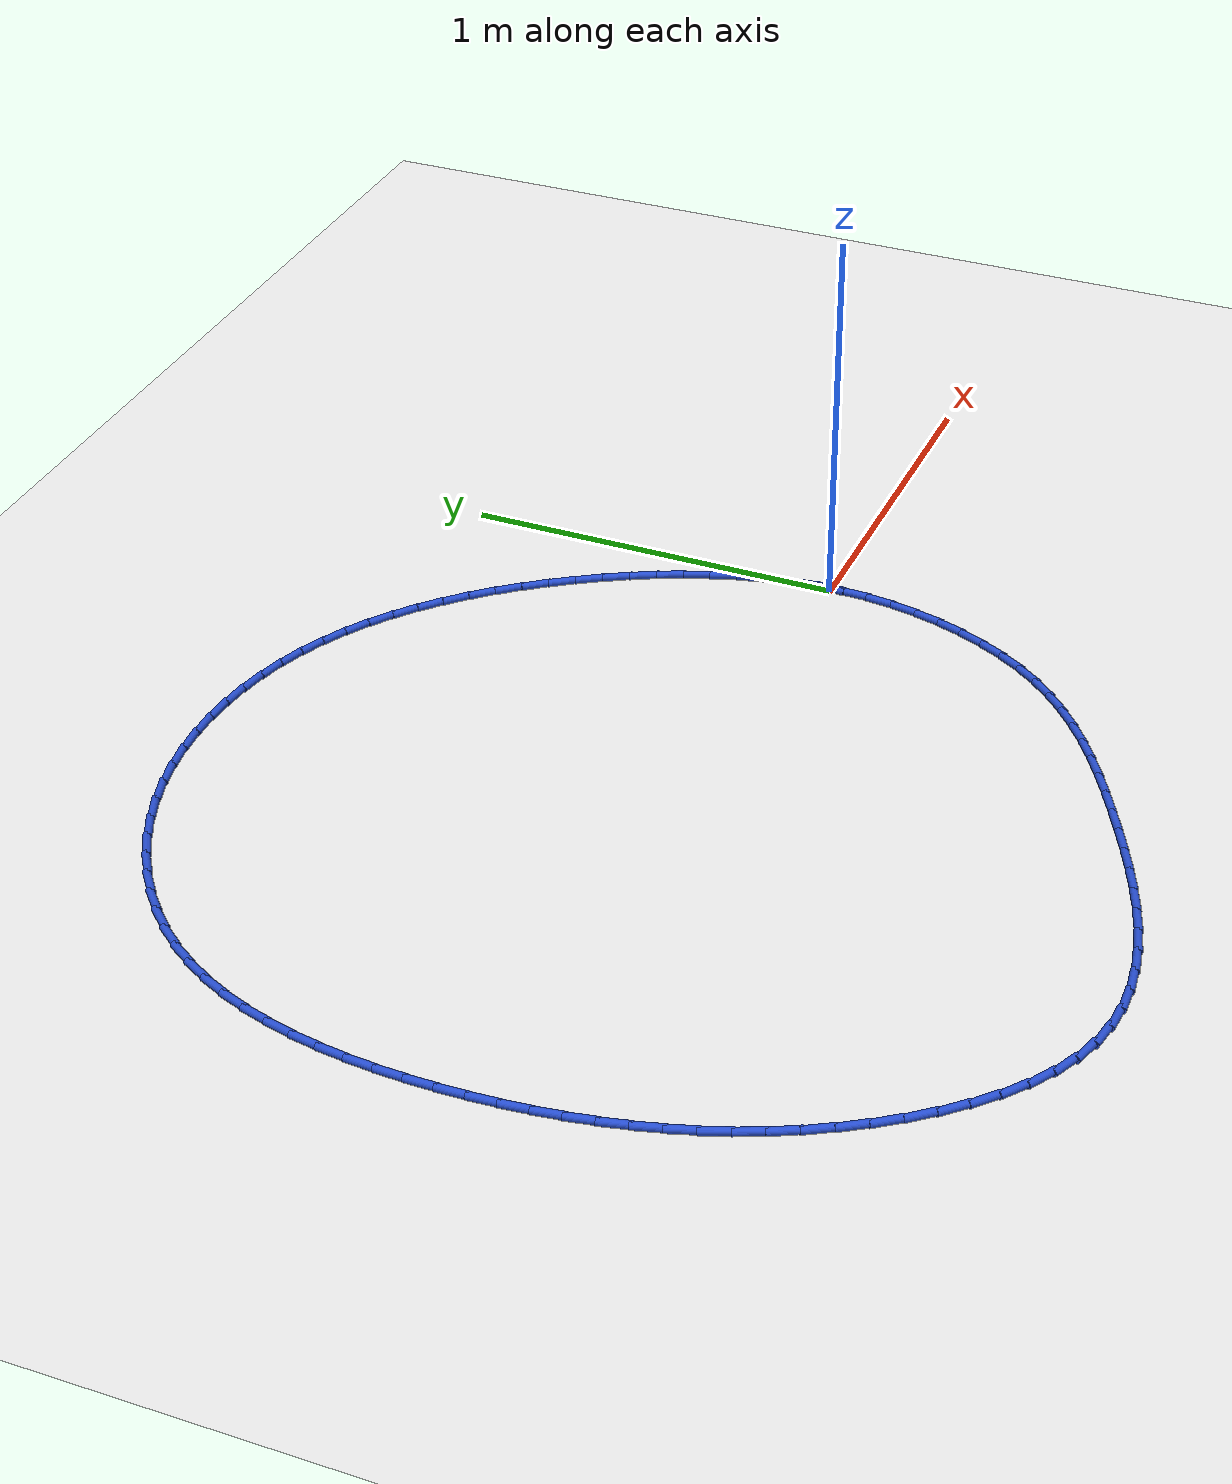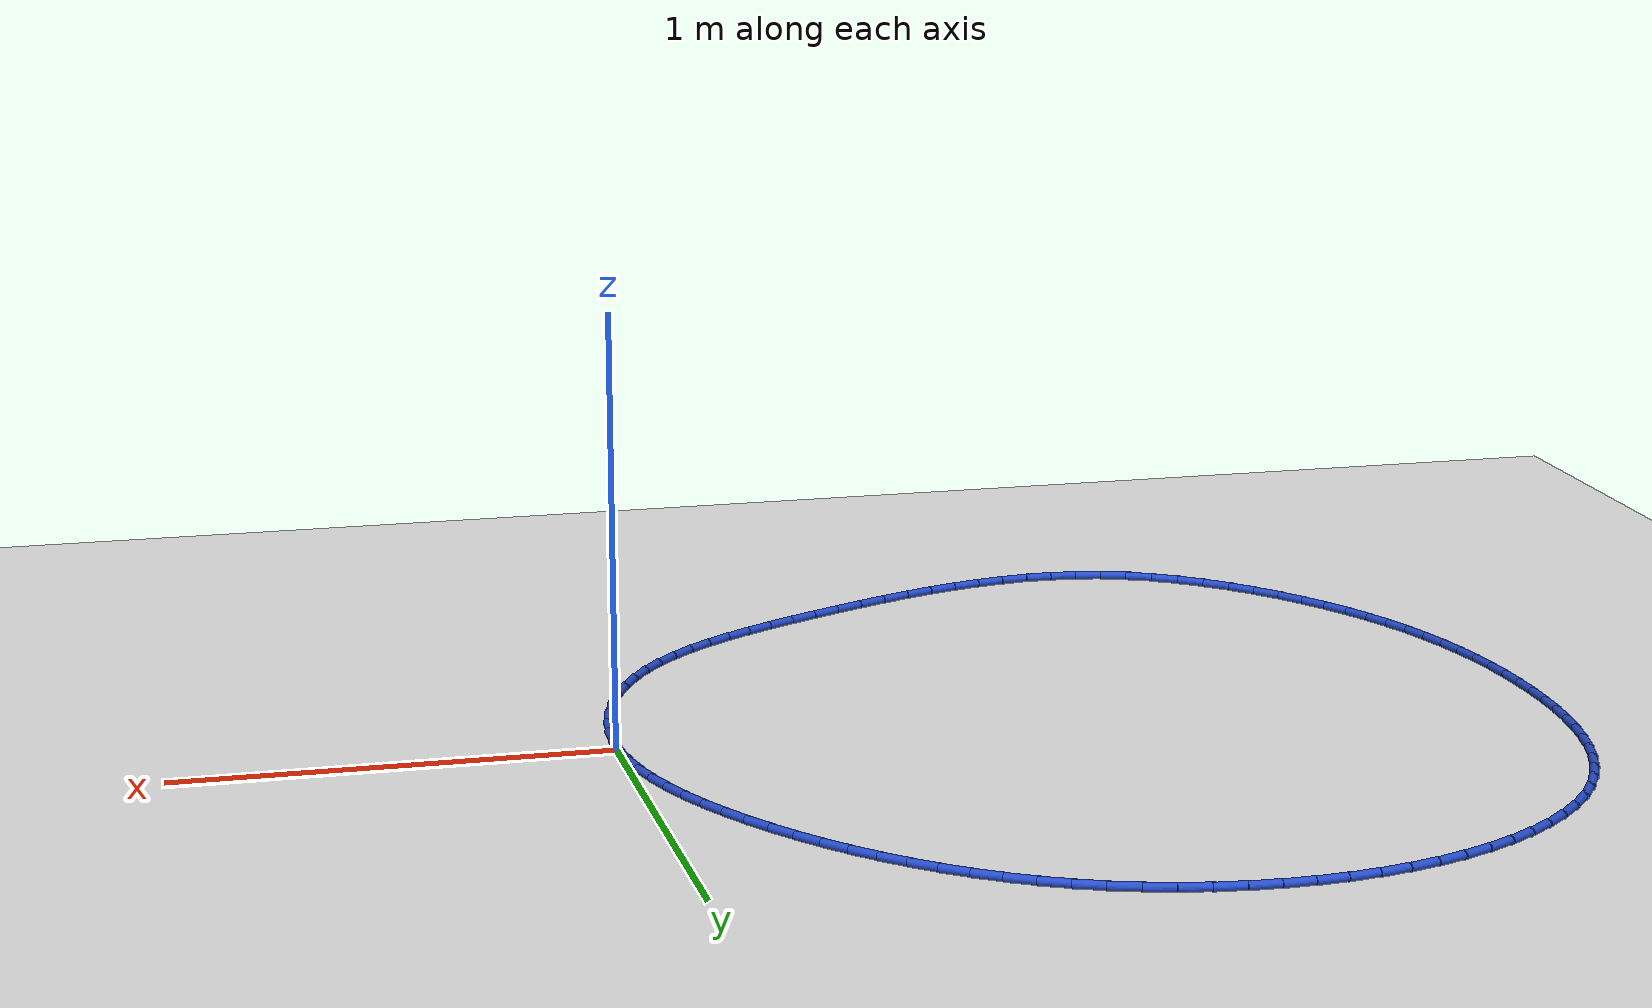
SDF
<sdf version="1.6">
 <world name="default">
  <light name="sun" type="directional">
   <pose>0 0 10 0 -0 0</pose>
   <diffuse>0.8 0.8 0.8 1</diffuse>
   <specular>0.2 0.2 0.2 1</specular>
   <attenuation>
    <range>1000</range>
    <constant>0.9</constant>
    <linear>0.01</linear>
    <quadratic>0.001</quadratic>
   </attenuation>
   <direction>-0.5 0.1 -0.9</direction>
  </light>
  <model name="ground_plane">
   <static>1</static>
   <link name="link">
    <collision name="collision">
     <geometry><plane><normal>0 0 1</normal><size>100 100</size></plane></geometry>
     <surface><friction><ode><mu>100</mu><mu2>50</mu2></ode></friction></surface>
    </collision>
    <visual name="visual">
     <cast_shadows>0</cast_shadows>
     <geometry><plane><normal>0 0 1</normal><size>100 100</size></plane></geometry>
     <material>
      <script><uri>file://media/materials/scripts/gazebo.material</uri><name>Gazebo/WhiteGlow</name></script>
     </material>
    </visual>
   </link>
  </model>
  <gravity>0 0 -9.8</gravity>
  <magnetic_field>6e-06 2.3e-05 -4.2e-05</magnetic_field>
  <atmosphere type="adiabatic"/>
  <physics name="default_physics" default="0" type="ode">
   <max_step_size>0.001</max_step_size>
   <real_time_factor>1</real_time_factor>
   <real_time_update_rate>1000</real_time_update_rate>
  </physics>
  <scene><ambient>0.4 0.4 0.4 1</ambient><background>0.7 0.7 0.7 1</background><shadows>1</shadows></scene>
  <spherical_coordinates>
   <surface_model>EARTH_WGS84</surface_model>
   <latitude_deg>0</latitude_deg>
   <longitude_deg>0</longitude_deg>
   <elevation>0</elevation>
   <heading_deg>0</heading_deg>
  </spherical_coordinates>
  <model name="line">
   <link name="link_0">
    <pose>9.71445146547012e-17 -2.7755575615628914e-17 0.01 0 1.57 -1.5147262831325878</pose>
    <collision name="collision">
     <geometry><cylinder><radius>0.01</radius><length>0.08</length></cylinder></geometry>
    </collision>
    <visual name="visual">
     <material>
      <script><name>Gazebo/Blue</name><uri>file://media/materials/scripts/gazebo.material</uri></script>
     </material>
     <geometry><cylinder><radius>0.01</radius><length>0.08</length></cylinder></geometry>
    </visual>
   </link>
   <link name="link_1">
    <pose>-0.003951358959909187 0.07039797024579914 0.01 0 1.57 -1.4385297579642664</pose>
    <collision name="collision">
     <geometry><cylinder><radius>0.01</radius><length>0.08</length></cylinder></geometry>
    </collision>
    <visual name="visual">
     <material>
      <script><name>Gazebo/Blue</name><uri>file://media/materials/scripts/gazebo.material</uri></script>
     </material>
     <geometry><cylinder><radius>0.01</radius><length>0.08</length></cylinder></geometry>
    </visual>
   </link>
   <link name="link_2">
    <pose>-0.013206673770764574 0.13996414740010804 0.01 0 1.57 -1.3667292630549812</pose>
    <collision name="collision">
     <geometry><cylinder><radius>0.01</radius><length>0.08</length></cylinder></geometry>
    </collision>
    <visual name="visual">
     <material>
      <script><name>Gazebo/Blue</name><uri>file://media/materials/scripts/gazebo.material</uri></script>
     </material>
     <geometry><cylinder><radius>0.01</radius><length>0.08</length></cylinder></geometry>
    </visual>
   </link>
   <link name="link_3">
    <pose>-0.027416838220805748 0.2086296212146814 0.01 0 1.57 -1.2996917438133595</pose>
    <collision name="collision">
     <geometry><cylinder><radius>0.01</radius><length>0.08</length></cylinder></geometry>
    </collision>
    <visual name="visual">
     <material>
      <script><name>Gazebo/Blue</name><uri>file://media/materials/scripts/gazebo.material</uri></script>
     </material>
     <geometry><cylinder><radius>0.01</radius><length>0.08</length></cylinder></geometry>
    </visual>
   </link>
   <link name="link_4">
    <pose>-0.046232746098272395 0.27632548144127406 0.01 0 1.57 -1.2375674090090112</pose>
    <collision name="collision">
     <geometry><cylinder><radius>0.01</radius><length>0.08</length></cylinder></geometry>
    </collision>
    <visual name="visual">
     <material>
      <script><name>Gazebo/Blue</name><uri>file://media/materials/scripts/gazebo.material</uri></script>
     </material>
     <geometry><cylinder><radius>0.01</radius><length>0.08</length></cylinder></geometry>
    </visual>
   </link>
   <link name="link_5">
    <pose>-0.06930529119140419 0.3429828178316404 0.01 0 1.57 -1.18033355965517</pose>
    <collision name="collision">
     <geometry><cylinder><radius>0.01</radius><length>0.08</length></cylinder></geometry>
    </collision>
    <visual name="visual">
     <material>
      <script><name>Gazebo/Blue</name><uri>file://media/materials/scripts/gazebo.material</uri></script>
     </material>
     <geometry><cylinder><radius>0.01</radius><length>0.08</length></cylinder></geometry>
    </visual>
   </link>
   <link name="link_6">
    <pose>-0.09628536728844081 0.40853272013753544 0.01 0 1.57 -1.127841644886024</pose>
    <collision name="collision">
     <geometry><cylinder><radius>0.01</radius><length>0.08</length></cylinder></geometry>
    </collision>
    <visual name="visual">
     <material>
      <script><name>Gazebo/Blue</name><uri>file://media/materials/scripts/gazebo.material</uri></script>
     </material>
     <geometry><cylinder><radius>0.01</radius><length>0.08</length></cylinder></geometry>
    </visual>
   </link>
   <link name="link_7">
    <pose>-0.12682386817762203 0.4729062781107139 0.01 0 1.57 -1.0798604011730617</pose>
    <collision name="collision">
     <geometry><cylinder><radius>0.01</radius><length>0.08</length></cylinder></geometry>
    </collision>
    <visual name="visual">
     <material>
      <script><name>Gazebo/Blue</name><uri>file://media/materials/scripts/gazebo.material</uri></script>
     </material>
     <geometry><cylinder><radius>0.01</radius><length>0.08</length></cylinder></geometry>
    </visual>
   </link>
   <link name="link_8">
    <pose>-0.16057168764718735 0.5360345815029303 0.01 0 1.57 -1.0361075438817524</pose>
    <collision name="collision">
     <geometry><cylinder><radius>0.01</radius><length>0.08</length></cylinder></geometry>
    </collision>
    <visual name="visual">
     <material>
      <script><name>Gazebo/Blue</name><uri>file://media/materials/scripts/gazebo.material</uri></script>
     </material>
     <geometry><cylinder><radius>0.01</radius><length>0.08</length></cylinder></geometry>
    </visual>
   </link>
   <link name="link_9">
    <pose>-0.19717995524021306 0.597848558604828 0.01 0 1.57 -0.994888940539869</pose>
    <collision name="collision">
     <geometry><cylinder><radius>0.01</radius><length>0.08</length></cylinder></geometry>
    </collision>
    <visual name="visual">
     <material>
      <script><name>Gazebo/Blue</name><uri>file://media/materials/scripts/gazebo.material</uri></script>
     </material>
     <geometry><cylinder><radius>0.01</radius><length>0.08</length></cylinder></geometry>
    </visual>
   </link>
   <link name="link_10">
    <pose>-0.2363827425794774 0.6582223332717217 0.01 0 1.57 -0.9524602867607532</pose>
    <collision name="collision">
     <geometry><cylinder><radius>0.01</radius><length>0.08</length></cylinder></geometry>
    </collision>
    <visual name="visual">
     <material>
      <script><name>Gazebo/Blue</name><uri>file://media/materials/scripts/gazebo.material</uri></script>
     </material>
     <geometry><cylinder><radius>0.01</radius><length>0.08</length></cylinder></geometry>
    </visual>
   </link>
   <link name="link_11">
    <pose>-0.2781188084887091 0.716889845499166 0.01 0 1.57 -0.9080032489054994</pose>
    <collision name="collision">
     <geometry><cylinder><radius>0.01</radius><length>0.08</length></cylinder></geometry>
    </collision>
    <visual name="visual">
     <material>
      <script><name>Gazebo/Blue</name><uri>file://media/materials/scripts/gazebo.material</uri></script>
     </material>
     <geometry><cylinder><radius>0.01</radius><length>0.08</length></cylinder></geometry>
    </visual>
   </link>
   <link name="link_12">
    <pose>-0.32235793013586844 0.7735637917892423 0.01 0 1.57 -0.8612242172225087</pose>
    <collision name="collision">
     <geometry><cylinder><radius>0.01</radius><length>0.08</length></cylinder></geometry>
    </collision>
    <visual name="visual">
     <material>
      <script><name>Gazebo/Blue</name><uri>file://media/materials/scripts/gazebo.material</uri></script>
     </material>
     <geometry><cylinder><radius>0.01</radius><length>0.08</length></cylinder></geometry>
    </visual>
   </link>
   <link name="link_13">
    <pose>-0.3690698846889154 0.8279568686440313 0.01 0 1.57 -0.8118363803283385</pose>
    <collision name="collision">
     <geometry><cylinder><radius>0.01</radius><length>0.08</length></cylinder></geometry>
    </collision>
    <visual name="visual">
     <material>
      <script><name>Gazebo/Blue</name><uri>file://media/materials/scripts/gazebo.material</uri></script>
     </material>
     <geometry><cylinder><radius>0.01</radius><length>0.08</length></cylinder></geometry>
    </visual>
   </link>
   <link name="link_14">
    <pose>-0.4182244493158099 0.8797817725656139 0.01 0 1.57 -0.759567248773542</pose>
    <collision name="collision">
     <geometry><cylinder><radius>0.01</radius><length>0.08</length></cylinder></geometry>
    </collision>
    <visual name="visual">
     <material>
      <script><name>Gazebo/Blue</name><uri>file://media/materials/scripts/gazebo.material</uri></script>
     </material>
     <geometry><cylinder><radius>0.01</radius><length>0.08</length></cylinder></geometry>
    </visual>
   </link>
   <link name="link_15">
    <pose>-0.4697914011845118 0.9287512000560705 0.01 0 1.57 -0.704170052382156</pose>
    <collision name="collision">
     <geometry><cylinder><radius>0.01</radius><length>0.08</length></cylinder></geometry>
    </collision>
    <visual name="visual">
     <material>
      <script><name>Gazebo/Blue</name><uri>file://media/materials/scripts/gazebo.material</uri></script>
     </material>
     <geometry><cylinder><radius>0.01</radius><length>0.08</length></cylinder></geometry>
    </visual>
   </link>
   <link name="link_16">
    <pose>-0.5237405174629813 0.9745778476174829 0.01 0 1.57 -0.6454395137074221</pose>
    <collision name="collision">
     <geometry><cylinder><radius>0.01</radius><length>0.08</length></cylinder></geometry>
    </collision>
    <visual name="visual">
     <material>
      <script><name>Gazebo/Blue</name><uri>file://media/materials/scripts/gazebo.material</uri></script>
     </material>
     <geometry><cylinder><radius>0.01</radius><length>0.08</length></cylinder></geometry>
    </visual>
   </link>
   <link name="link_17">
    <pose>-0.5800415753191785 1.0169744117519315 0.01 0 1.57 -0.5832321252114415</pose>
    <collision name="collision">
     <geometry><cylinder><radius>0.01</radius><length>0.08</length></cylinder></geometry>
    </collision>
    <visual name="visual">
     <material>
      <script><name>Gazebo/Blue</name><uri>file://media/materials/scripts/gazebo.material</uri></script>
     </material>
     <geometry><cylinder><radius>0.01</radius><length>0.08</length></cylinder></geometry>
    </visual>
   </link>
   <link name="link_18">
    <pose>-0.6386643519210631 1.0556535889614969 0.01 0 1.57 -0.5174903272145824</pose>
    <collision name="collision">
     <geometry><cylinder><radius>0.01</radius><length>0.08</length></cylinder></geometry>
    </collision>
    <visual name="visual">
     <material>
      <script><name>Gazebo/Blue</name><uri>file://media/materials/scripts/gazebo.material</uri></script>
     </material>
     <geometry><cylinder><radius>0.01</radius><length>0.08</length></cylinder></geometry>
    </visual>
   </link>
   <link name="link_19">
    <pose>-0.6995786244365955 1.090328075748261 0.01 0 1.57 -0.44826883846639787</pose>
    <collision name="collision">
     <geometry><cylinder><radius>0.01</radius><length>0.08</length></cylinder></geometry>
    </collision>
    <visual name="visual">
     <material>
      <script><name>Gazebo/Blue</name><uri>file://media/materials/scripts/gazebo.material</uri></script>
     </material>
     <geometry><cylinder><radius>0.01</radius><length>0.08</length></cylinder></geometry>
    </visual>
   </link>
   <link name="link_20">
    <pose>-0.7627541700337356 1.1207105686143037 0.01 0 1.57 -0.3762239801789702</pose>
    <collision name="collision">
     <geometry><cylinder><radius>0.01</radius><length>0.08</length></cylinder></geometry>
    </collision>
    <visual name="visual">
     <material>
      <script><name>Gazebo/Blue</name><uri>file://media/materials/scripts/gazebo.material</uri></script>
     </material>
     <geometry><cylinder><radius>0.01</radius><length>0.08</length></cylinder></geometry>
    </visual>
   </link>
   <link name="link_21">
    <pose>-0.8281313686734181 1.1465372349585983 0.01 0 1.57 -0.30475079434452523</pose>
    <collision name="collision">
     <geometry><cylinder><radius>0.01</radius><length>0.08</length></cylinder></geometry>
    </collision>
    <visual name="visual">
     <material>
      <script><name>Gazebo/Blue</name><uri>file://media/materials/scripts/gazebo.material</uri></script>
     </material>
     <geometry><cylinder><radius>0.01</radius><length>0.08</length></cylinder></geometry>
    </visual>
   </link>
   <link name="link_22">
    <pose>-0.895442934503482 1.1677100437436199 0.01 0 1.57 -0.23498118925493577</pose>
    <collision name="collision">
     <geometry><cylinder><radius>0.01</radius><length>0.08</length></cylinder></geometry>
    </collision>
    <visual name="visual">
     <material>
      <script><name>Gazebo/Blue</name><uri>file://media/materials/scripts/gazebo.material</uri></script>
     </material>
     <geometry><cylinder><radius>0.01</radius><length>0.08</length></cylinder></geometry>
    </visual>
   </link>
   <link name="link_23">
    <pose>-0.9643321326145832 1.184202380566642 0.01 0 1.57 -0.16654407709810162</pose>
    <collision name="collision">
     <geometry><cylinder><radius>0.01</radius><length>0.08</length></cylinder></geometry>
    </collision>
    <visual name="visual">
     <material>
      <script><name>Gazebo/Blue</name><uri>file://media/materials/scripts/gazebo.material</uri></script>
     </material>
     <geometry><cylinder><radius>0.01</radius><length>0.08</length></cylinder></geometry>
    </visual>
   </link>
   <link name="link_24">
    <pose>-1.034441878322058 1.1959879102875395 0.01 0 1.57 -0.09904177817907332</pose>
    <collision name="collision">
     <geometry><cylinder><radius>0.01</radius><length>0.08</length></cylinder></geometry>
    </collision>
    <visual name="visual">
     <material>
      <script><name>Gazebo/Blue</name><uri>file://media/materials/scripts/gazebo.material</uri></script>
     </material>
     <geometry><cylinder><radius>0.01</radius><length>0.08</length></cylinder></geometry>
    </visual>
   </link>
   <link name="link_25">
    <pose>-1.1054150869412434 1.2030402977661874 0.01 0 1.57 -0.032066835081105485</pose>
    <collision name="collision">
     <geometry><cylinder><radius>0.01</radius><length>0.08</length></cylinder></geometry>
    </collision>
    <visual name="visual">
     <material>
      <script><name>Gazebo/Blue</name><uri>file://media/materials/scripts/gazebo.material</uri></script>
     </material>
     <geometry><cylinder><radius>0.01</radius><length>0.08</length></cylinder></geometry>
    </visual>
   </link>
   <link name="link_26">
    <pose>-1.1768946737874748 1.2053332078624588 0.01 0 1.57 0.034788993394477795</pose>
    <collision name="collision">
     <geometry><cylinder><radius>0.01</radius><length>0.08</length></cylinder></geometry>
    </collision>
    <visual name="visual">
     <material>
      <script><name>Gazebo/Blue</name><uri>file://media/materials/scripts/gazebo.material</uri></script>
     </material>
     <geometry><cylinder><radius>0.01</radius><length>0.08</length></cylinder></geometry>
    </visual>
   </link>
   <link name="link_27">
    <pose>-1.24852355417609 1.20284030543623 0.01 0 1.57 0.10192696554585572</pose>
    <collision name="collision">
     <geometry><cylinder><radius>0.01</radius><length>0.08</length></cylinder></geometry>
    </collision>
    <visual name="visual">
     <material>
      <script><name>Gazebo/Blue</name><uri>file://media/materials/scripts/gazebo.material</uri></script>
     </material>
     <geometry><cylinder><radius>0.01</radius><length>0.08</length></cylinder></geometry>
    </visual>
   </link>
   <link name="link_28">
    <pose>-1.3199446434224245 1.1955352553473741 0.01 0 1.57 0.16973376282997418</pose>
    <collision name="collision">
     <geometry><cylinder><radius>0.01</radius><length>0.08</length></cylinder></geometry>
    </collision>
    <visual name="visual">
     <material>
      <script><name>Gazebo/Blue</name><uri>file://media/materials/scripts/gazebo.material</uri></script>
     </material>
     <geometry><cylinder><radius>0.01</radius><length>0.08</length></cylinder></geometry>
    </visual>
   </link>
   <link name="link_29">
    <pose>-1.3908008568418146 1.183391722455767 0.01 0 1.57 0.23857309184566997</pose>
    <collision name="collision">
     <geometry><cylinder><radius>0.01</radius><length>0.08</length></cylinder></geometry>
    </collision>
    <visual name="visual">
     <material>
      <script><name>Gazebo/Blue</name><uri>file://media/materials/scripts/gazebo.material</uri></script>
     </material>
     <geometry><cylinder><radius>0.01</radius><length>0.08</length></cylinder></geometry>
    </visual>
   </link>
   <link name="link_30">
    <pose>-1.4607351097495973 1.1663833716212828 0.01 0 1.57 0.30866552039514705</pose>
    <collision name="collision">
     <geometry><cylinder><radius>0.01</radius><length>0.08</length></cylinder></geometry>
    </collision>
    <visual name="visual">
     <material>
      <script><name>Gazebo/Blue</name><uri>file://media/materials/scripts/gazebo.material</uri></script>
     </material>
     <geometry><cylinder><radius>0.01</radius><length>0.08</length></cylinder></geometry>
    </visual>
   </link>
   <link name="link_31">
    <pose>-1.5293869067040609 1.1444932846334737 0.01 0 1.57 0.37899876862672727</pose>
    <collision name="collision">
     <geometry><cylinder><radius>0.01</radius><length>0.08</length></cylinder></geometry>
    </collision>
    <visual name="visual">
     <material>
      <script><name>Gazebo/Blue</name><uri>file://media/materials/scripts/gazebo.material</uri></script>
     </material>
     <geometry><cylinder><radius>0.01</radius><length>0.08</length></cylinder></geometry>
    </visual>
   </link>
   <link name="link_32">
    <pose>-1.5963524460936316 1.1178241094516712 0.01 0 1.57 0.449241394405674</pose>
    <collision name="collision">
     <geometry><cylinder><radius>0.01</radius><length>0.08</length></cylinder></geometry>
    </collision>
    <visual name="visual">
     <material>
      <script><name>Gazebo/Blue</name><uri>file://media/materials/scripts/gazebo.material</uri></script>
     </material>
     <geometry><cylinder><radius>0.01</radius><length>0.08</length></cylinder></geometry>
    </visual>
   </link>
   <link name="link_33">
    <pose>-1.6611981467043748 1.086560714028409 0.01 0 1.57 0.5200638719967609</pose>
    <collision name="collision">
     <geometry><cylinder><radius>0.01</radius><length>0.08</length></cylinder></geometry>
    </collision>
    <visual name="visual">
     <material>
      <script><name>Gazebo/Blue</name><uri>file://media/materials/scripts/gazebo.material</uri></script>
     </material>
     <geometry><cylinder><radius>0.01</radius><length>0.08</length></cylinder></geometry>
    </visual>
   </link>
   <link name="link_34">
    <pose>-1.723489841366415 1.0508895841112795 0.01 0 1.57 0.5921551304326107</pose>
    <collision name="collision">
     <geometry><cylinder><radius>0.01</radius><length>0.08</length></cylinder></geometry>
    </collision>
    <visual name="visual">
     <material>
      <script><name>Gazebo/Blue</name><uri>file://media/materials/scripts/gazebo.material</uri></script>
     </material>
     <geometry><cylinder><radius>0.01</radius><length>0.08</length></cylinder></geometry>
    </visual>
   </link>
   <link name="link_35">
    <pose>-1.7827933629098764 1.0109972054478744 0.01 0 1.57 0.6661960105916387</pose>
    <collision name="collision">
     <geometry><cylinder><radius>0.01</radius><length>0.08</length></cylinder></geometry>
    </collision>
    <visual name="visual">
     <material>
      <script><name>Gazebo/Blue</name><uri>file://media/materials/scripts/gazebo.material</uri></script>
     </material>
     <geometry><cylinder><radius>0.01</radius><length>0.08</length></cylinder></geometry>
    </visual>
   </link>
   <link name="link_36">
    <pose>-1.8386745441648824 0.9670700637857859 0.01 0 1.57 0.7428461998371294</pose>
    <collision name="collision">
     <geometry><cylinder><radius>0.01</radius><length>0.08</length></cylinder></geometry>
    </collision>
    <visual name="visual">
     <material>
      <script><name>Gazebo/Blue</name><uri>file://media/materials/scripts/gazebo.material</uri></script>
     </material>
     <geometry><cylinder><radius>0.01</radius><length>0.08</length></cylinder></geometry>
    </visual>
   </link>
   <link name="link_37">
    <pose>-1.8906992179615572 0.9192946448726056 0.01 0 1.57 0.8227224176458039</pose>
    <collision name="collision">
     <geometry><cylinder><radius>0.01</radius><length>0.08</length></cylinder></geometry>
    </collision>
    <visual name="visual">
     <material>
      <script><name>Gazebo/Blue</name><uri>file://media/materials/scripts/gazebo.material</uri></script>
     </material>
     <geometry><cylinder><radius>0.01</radius><length>0.08</length></cylinder></geometry>
    </visual>
   </link>
   <link name="link_38">
    <pose>-1.9384332171300251 0.867857434455926 0.01 0 1.57 0.9063646610201018</pose>
    <collision name="collision">
     <geometry><cylinder><radius>0.01</radius><length>0.08</length></cylinder></geometry>
    </collision>
    <visual name="visual">
     <material>
      <script><name>Gazebo/Blue</name><uri>file://media/materials/scripts/gazebo.material</uri></script>
     </material>
     <geometry><cylinder><radius>0.01</radius><length>0.08</length></cylinder></geometry>
    </visual>
   </link>
   <link name="link_39">
    <pose>-1.9814423745004104 0.8129449182833388 0.01 0 1.57 0.9929312510806773</pose>
    <collision name="collision">
     <geometry><cylinder><radius>0.01</radius><length>0.08</length></cylinder></geometry>
    </collision>
    <visual name="visual">
     <material>
      <script><name>Gazebo/Blue</name><uri>file://media/materials/scripts/gazebo.material</uri></script>
     </material>
     <geometry><cylinder><radius>0.01</radius><length>0.08</length></cylinder></geometry>
    </visual>
   </link>
   <link name="link_40">
    <pose>-2.019383250546911 0.7547642213905755 0.01 0 1.57 1.0760375868554297</pose>
    <collision name="collision">
     <geometry><cylinder><radius>0.01</radius><length>0.08</length></cylinder></geometry>
    </collision>
    <visual name="visual">
     <material>
      <script><name>Gazebo/Blue</name><uri>file://media/materials/scripts/gazebo.material</uri></script>
     </material>
     <geometry><cylinder><radius>0.01</radius><length>0.08</length></cylinder></geometry>
    </visual>
   </link>
   <link name="link_41">
    <pose>-2.052368233301962 0.6936261632982421 0.01 0 1.57 1.1532264255006517</pose>
    <collision name="collision">
     <geometry><cylinder><radius>0.01</radius><length>0.08</length></cylinder></geometry>
    </collision>
    <visual name="visual">
     <material>
      <script><name>Gazebo/Blue</name><uri>file://media/materials/scripts/gazebo.material</uri></script>
     </material>
     <geometry><cylinder><radius>0.01</radius><length>0.08</length></cylinder></geometry>
    </visual>
   </link>
   <link name="link_42">
    <pose>-2.080652554246029 0.6298740584419494 0.01 0 1.57 1.2242927754589668</pose>
    <collision name="collision">
     <geometry><cylinder><radius>0.01</radius><length>0.08</length></cylinder></geometry>
    </collision>
    <visual name="visual">
     <material>
      <script><name>Gazebo/Blue</name><uri>file://media/materials/scripts/gazebo.material</uri></script>
     </material>
     <geometry><cylinder><radius>0.01</radius><length>0.08</length></cylinder></geometry>
    </visual>
   </link>
   <link name="link_43">
    <pose>-2.10449149477638 0.5638512326126911 0.01 0 1.57 1.2893090855593237</pose>
    <collision name="collision">
     <geometry><cylinder><radius>0.01</radius><length>0.08</length></cylinder></geometry>
    </collision>
    <visual name="visual">
     <material>
      <script><name>Gazebo/Blue</name><uri>file://media/materials/scripts/gazebo.material</uri></script>
     </material>
     <geometry><cylinder><radius>0.01</radius><length>0.08</length></cylinder></geometry>
    </visual>
   </link>
   <link name="link_44">
    <pose>-2.1241403362902873 0.4959010116014624 0.01 0 1.57 1.3485402040727432</pose>
    <collision name="collision">
     <geometry><cylinder><radius>0.01</radius><length>0.08</length></cylinder></geometry>
    </collision>
    <visual name="visual">
     <material>
      <script><name>Gazebo/Blue</name><uri>file://media/materials/scripts/gazebo.material</uri></script>
     </material>
     <geometry><cylinder><radius>0.01</radius><length>0.08</length></cylinder></geometry>
    </visual>
   </link>
   <link name="link_45">
    <pose>-2.1398543601850175 0.4263667211992582 0.01 0 1.57 1.4023686544207465</pose>
    <collision name="collision">
     <geometry><cylinder><radius>0.01</radius><length>0.08</length></cylinder></geometry>
    </collision>
    <visual name="visual">
     <material>
      <script><name>Gazebo/Blue</name><uri>file://media/materials/scripts/gazebo.material</uri></script>
     </material>
     <geometry><cylinder><radius>0.01</radius><length>0.08</length></cylinder></geometry>
    </visual>
   </link>
   <link name="link_46">
    <pose>-2.1518888478578404 0.35559168719707307 0.01 0 1.57 1.451236205650925</pose>
    <collision name="collision">
     <geometry><cylinder><radius>0.01</radius><length>0.08</length></cylinder></geometry>
    </collision>
    <visual name="visual">
     <material>
      <script><name>Gazebo/Blue</name><uri>file://media/materials/scripts/gazebo.material</uri></script>
     </material>
     <geometry><cylinder><radius>0.01</radius><length>0.08</length></cylinder></geometry>
    </visual>
   </link>
   <link name="link_47">
    <pose>-2.160499080706025 0.2839192353859016 0.01 0 1.57 1.4956023598085637</pose>
    <collision name="collision">
     <geometry><cylinder><radius>0.01</radius><length>0.08</length></cylinder></geometry>
    </collision>
    <visual name="visual">
     <material>
      <script><name>Gazebo/Blue</name><uri>file://media/materials/scripts/gazebo.material</uri></script>
     </material>
     <geometry><cylinder><radius>0.01</radius><length>0.08</length></cylinder></geometry>
    </visual>
   </link>
   <link name="link_48">
    <pose>-2.1659403401268404 0.21169269155673892 0.01 0 1.57 1.53591730742914</pose>
    <collision name="collision">
     <geometry><cylinder><radius>0.01</radius><length>0.08</length></cylinder></geometry>
    </collision>
    <visual name="visual">
     <material>
      <script><name>Gazebo/Blue</name><uri>file://media/materials/scripts/gazebo.material</uri></script>
     </material>
     <geometry><cylinder><radius>0.01</radius><length>0.08</length></cylinder></geometry>
    </visual>
   </link>
   <link name="link_49">
    <pose>-2.1684679075175564 0.13925538150057906 0.01 0 1.57 -1.5689867209474087</pose>
    <collision name="collision">
     <geometry><cylinder><radius>0.01</radius><length>0.08</length></cylinder></geometry>
    </collision>
    <visual name="visual">
     <material>
      <script><name>Gazebo/Blue</name><uri>file://media/materials/scripts/gazebo.material</uri></script>
     </material>
     <geometry><cylinder><radius>0.01</radius><length>0.08</length></cylinder></geometry>
    </visual>
   </link>
   <link name="link_50">
    <pose>-2.1683370642754416 0.06695063100841711 0.01 0 1.57 -1.5348481173438646</pose>
    <collision name="collision">
     <geometry><cylinder><radius>0.01</radius><length>0.08</length></cylinder></geometry>
    </collision>
    <visual name="visual">
     <material>
      <script><name>Gazebo/Blue</name><uri>file://media/materials/scripts/gazebo.material</uri></script>
     </material>
     <geometry><cylinder><radius>0.01</radius><length>0.08</length></cylinder></geometry>
    </visual>
   </link>
   <link name="link_51">
    <pose>-2.16575249495554 -0.004915421285164168 0.01 0 1.57 -1.4996627123506463</pose>
    <collision name="collision">
     <geometry><cylinder><radius>0.01</radius><length>0.08</length></cylinder></geometry>
    </collision>
    <visual name="visual">
     <material>
      <script><name>Gazebo/Blue</name><uri>file://media/materials/scripts/gazebo.material</uri></script>
     </material>
     <geometry><cylinder><radius>0.01</radius><length>0.08</length></cylinder></geometry>
    </visual>
   </link>
   <link name="link_52">
    <pose>-2.160671901158835 -0.07621816178429741 0.01 0 1.57 -1.4623491205203896</pose>
    <collision name="collision">
     <geometry><cylinder><radius>0.01</radius><length>0.08</length></cylinder></geometry>
    </collision>
    <visual name="visual">
     <material>
      <script><name>Gazebo/Blue</name><uri>file://media/materials/scripts/gazebo.material</uri></script>
     </material>
     <geometry><cylinder><radius>0.01</radius><length>0.08</length></cylinder></geometry>
    </visual>
   </link>
   <link name="link_53">
    <pose>-2.1529777372867125 -0.14688828132038675 0.01 0 1.57 -1.4228840227054091</pose>
    <collision name="collision">
     <geometry><cylinder><radius>0.01</radius><length>0.08</length></cylinder></geometry>
    </collision>
    <visual name="visual">
     <material>
      <script><name>Gazebo/Blue</name><uri>file://media/materials/scripts/gazebo.material</uri></script>
     </material>
     <geometry><cylinder><radius>0.01</radius><length>0.08</length></cylinder></geometry>
    </visual>
   </link>
   <link name="link_54">
    <pose>-2.1425524397034477 -0.21685648398157026 0.01 0 1.57 -1.3812696228769057</pose>
    <collision name="collision">
     <geometry><cylinder><radius>0.01</radius><length>0.08</length></cylinder></geometry>
    </collision>
    <visual name="visual">
     <material>
      <script><name>Gazebo/Blue</name><uri>file://media/materials/scripts/gazebo.material</uri></script>
     </material>
     <geometry><cylinder><radius>0.01</radius><length>0.08</length></cylinder></geometry>
    </visual>
   </link>
   <link name="link_55">
    <pose>-2.1292784447733144 -0.28605347385598606 0.01 0 1.57 -1.3375390942244327</pose>
    <collision name="collision">
     <geometry><cylinder><radius>0.01</radius><length>0.08</length></cylinder></geometry>
    </collision>
    <visual name="visual">
     <material>
      <script><name>Gazebo/Blue</name><uri>file://media/materials/scripts/gazebo.material</uri></script>
     </material>
     <geometry><cylinder><radius>0.01</radius><length>0.08</length></cylinder></geometry>
    </visual>
   </link>
   <link name="link_56">
    <pose>-2.113038188860587 -0.3544099550317718 0.01 0 1.57 -1.2917620770308629</pose>
    <collision name="collision">
     <geometry><cylinder><radius>0.01</radius><length>0.08</length></cylinder></geometry>
    </collision>
    <visual name="visual">
     <material>
      <script><name>Gazebo/Blue</name><uri>file://media/materials/scripts/gazebo.material</uri></script>
     </material>
     <geometry><cylinder><radius>0.01</radius><length>0.08</length></cylinder></geometry>
    </visual>
   </link>
   <link name="link_57">
    <pose>-2.0937141083295416 -0.42185663159706577 0.01 0 1.57 -1.2440494668312698</pose>
    <collision name="collision">
     <geometry><cylinder><radius>0.01</radius><length>0.08</length></cylinder></geometry>
    </collision>
    <visual name="visual">
     <material>
      <script><name>Gazebo/Blue</name><uri>file://media/materials/scripts/gazebo.material</uri></script>
     </material>
     <geometry><cylinder><radius>0.01</radius><length>0.08</length></cylinder></geometry>
    </visual>
   </link>
   <link name="link_58">
    <pose>-2.071188639544452 -0.4883242076400052 0.01 0 1.57 -1.194556874577295</pose>
    <collision name="collision">
     <geometry><cylinder><radius>0.01</radius><length>0.08</length></cylinder></geometry>
    </collision>
    <visual name="visual">
     <material>
      <script><name>Gazebo/Blue</name><uri>file://media/materials/scripts/gazebo.material</uri></script>
     </material>
     <geometry><cylinder><radius>0.01</radius><length>0.08</length></cylinder></geometry>
    </visual>
   </link>
   <link name="link_59">
    <pose>-2.0453442188695927 -0.5537433872487295 0.01 0 1.57 -1.1434861026912864</pose>
    <collision name="collision">
     <geometry><cylinder><radius>0.01</radius><length>0.08</length></cylinder></geometry>
    </collision>
    <visual name="visual">
     <material>
      <script><name>Gazebo/Blue</name><uri>file://media/materials/scripts/gazebo.material</uri></script>
     </material>
     <geometry><cylinder><radius>0.01</radius><length>0.08</length></cylinder></geometry>
    </visual>
   </link>
   <link name="link_60">
    <pose>-2.016063282669238 -0.618044874511376 0.01 0 1.57 -1.0910840415553187</pose>
    <collision name="collision">
     <geometry><cylinder><radius>0.01</radius><length>0.08</length></cylinder></geometry>
    </collision>
    <visual name="visual">
     <material>
      <script><name>Gazebo/Blue</name><uri>file://media/materials/scripts/gazebo.material</uri></script>
     </material>
     <geometry><cylinder><radius>0.01</radius><length>0.08</length></cylinder></geometry>
    </visual>
   </link>
   <link name="link_61">
    <pose>-1.9832282673076647 -0.6811593735160829 0.01 0 1.57 -1.0376385744219503</pose>
    <collision name="collision">
     <geometry><cylinder><radius>0.01</radius><length>0.08</length></cylinder></geometry>
    </collision>
    <visual name="visual">
     <material>
      <script><name>Gazebo/Blue</name><uri>file://media/materials/scripts/gazebo.material</uri></script>
     </material>
     <geometry><cylinder><radius>0.01</radius><length>0.08</length></cylinder></geometry>
    </visual>
   </link>
   <link name="link_62">
    <pose>-1.9467216091491446 -0.7430175883509877 0.01 0 1.57 -0.983428897262233</pose>
    <collision name="collision">
     <geometry><cylinder><radius>0.01</radius><length>0.08</length></cylinder></geometry>
    </collision>
    <visual name="visual">
     <material>
      <script><name>Gazebo/Blue</name><uri>file://media/materials/scripts/gazebo.material</uri></script>
     </material>
     <geometry><cylinder><radius>0.01</radius><length>0.08</length></cylinder></geometry>
    </visual>
   </link>
   <link name="link_63">
    <pose>-1.9064312340337979 -0.8035364024016743 0.01 0 1.57 -0.9272318588652644</pose>
    <collision name="collision">
     <geometry><cylinder><radius>0.01</radius><length>0.08</length></cylinder></geometry>
    </collision>
    <visual name="visual">
     <material>
      <script><name>Gazebo/Blue</name><uri>file://media/materials/scripts/gazebo.material</uri></script>
     </material>
     <geometry><cylinder><radius>0.01</radius><length>0.08</length></cylinder></geometry>
    </visual>
   </link>
   <link name="link_64">
    <pose>-1.8624047823818415 -0.8622305900422693 0.01 0 1.57 -0.8663605118094807</pose>
    <collision name="collision">
     <geometry><cylinder><radius>0.01</radius><length>0.08</length></cylinder></geometry>
    </collision>
    <visual name="visual">
     <material>
      <script><name>Gazebo/Blue</name><uri>file://media/materials/scripts/gazebo.material</uri></script>
     </material>
     <geometry><cylinder><radius>0.01</radius><length>0.08</length></cylinder></geometry>
    </visual>
   </link>
   <link name="link_65">
    <pose>-1.8148707562442596 -0.9181595752868027 0.01 0 1.57 -0.7989439306504439</pose>
    <collision name="collision">
     <geometry><cylinder><radius>0.01</radius><length>0.08</length></cylinder></geometry>
    </collision>
    <visual name="visual">
     <material>
      <script><name>Gazebo/Blue</name><uri>file://media/materials/scripts/gazebo.material</uri></script>
     </material>
     <geometry><cylinder><radius>0.01</radius><length>0.08</length></cylinder></geometry>
    </visual>
   </link>
   <link name="link_66">
    <pose>-1.7640673970677978 -0.9703582615401195 0.01 0 1.57 -0.7230034235409716</pose>
    <collision name="collision">
     <geometry><cylinder><radius>0.01</radius><length>0.08</length></cylinder></geometry>
    </collision>
    <visual name="visual">
     <material>
      <script><name>Gazebo/Blue</name><uri>file://media/materials/scripts/gazebo.material</uri></script>
     </material>
     <geometry><cylinder><radius>0.01</radius><length>0.08</length></cylinder></geometry>
    </visual>
   </link>
   <link name="link_67">
    <pose>-1.7102329462991974 -1.017861552207064 0.01 0 1.57 -0.6363692960570433</pose>
    <collision name="collision">
     <geometry><cylinder><radius>0.01</radius><length>0.08</length></cylinder></geometry>
    </collision>
    <visual name="visual">
     <material>
      <script><name>Gazebo/Blue</name><uri>file://media/materials/scripts/gazebo.material</uri></script>
     </material>
     <geometry><cylinder><radius>0.01</radius><length>0.08</length></cylinder></geometry>
    </visual>
   </link>
   <link name="link_68">
    <pose>-1.653605645385203 -1.0597043506924808 0.01 0 1.57 -0.5367845027953203</pose>
    <collision name="collision">
     <geometry><cylinder><radius>0.01</radius><length>0.08</length></cylinder></geometry>
    </collision>
    <visual name="visual">
     <material>
      <script><name>Gazebo/Blue</name><uri>file://media/materials/scripts/gazebo.material</uri></script>
     </material>
     <geometry><cylinder><radius>0.01</radius><length>0.08</length></cylinder></geometry>
    </visual>
   </link>
   <link name="link_69">
    <pose>-1.5944237357725564 -1.0949215604012144 0.01 0 1.57 -0.42220871974547786</pose>
    <collision name="collision">
     <geometry><cylinder><radius>0.01</radius><length>0.08</length></cylinder></geometry>
    </collision>
    <visual name="visual">
     <material>
      <script><name>Gazebo/Blue</name><uri>file://media/materials/scripts/gazebo.material</uri></script>
     </material>
     <geometry><cylinder><radius>0.01</radius><length>0.08</length></cylinder></geometry>
    </visual>
   </link>
   <link name="link_70">
    <pose>-1.5329254589080015 -1.1225480847381095 0.01 0 1.57 -0.2931993546217727</pose>
    <collision name="collision">
     <geometry><cylinder><radius>0.01</radius><length>0.08</length></cylinder></geometry>
    </collision>
    <visual name="visual">
     <material>
      <script><name>Gazebo/Blue</name><uri>file://media/materials/scripts/gazebo.material</uri></script>
     </material>
     <geometry><cylinder><radius>0.01</radius><length>0.08</length></cylinder></geometry>
    </visual>
   </link>
   <link name="link_71">
    <pose>-1.4693523093220757 -1.1417408431336118 0.01 0 1.57 -0.1658229064659143</pose>
    <collision name="collision">
     <geometry><cylinder><radius>0.01</radius><length>0.08</length></cylinder></geometry>
    </collision>
    <visual name="visual">
     <material>
      <script><name>Gazebo/Blue</name><uri>file://media/materials/scripts/gazebo.material</uri></script>
     </material>
     <geometry><cylinder><radius>0.01</radius><length>0.08</length></cylinder></geometry>
    </visual>
   </link>
   <link name="link_72">
    <pose>-1.4039731339191819 -1.152682682464691 0.01 0 1.57 -0.050584152848311005</pose>
    <collision name="collision">
     <geometry><cylinder><radius>0.01</radius><length>0.08</length></cylinder></geometry>
    </collision>
    <visual name="visual">
     <material>
      <script><name>Gazebo/Blue</name><uri>file://media/materials/scripts/gazebo.material</uri></script>
     </material>
     <geometry><cylinder><radius>0.01</radius><length>0.08</length></cylinder></geometry>
    </visual>
   </link>
   <link name="link_73">
    <pose>-1.337070465744425 -1.1560697866755203 0.01 0 1.57 0.05084329329314161</pose>
    <collision name="collision">
     <geometry><cylinder><radius>0.01</radius><length>0.08</length></cylinder></geometry>
    </collision>
    <visual name="visual">
     <material>
      <script><name>Gazebo/Blue</name><uri>file://media/materials/scripts/gazebo.material</uri></script>
     </material>
     <geometry><cylinder><radius>0.01</radius><length>0.08</length></cylinder></geometry>
    </visual>
   </link>
   <link name="link_74">
    <pose>-1.2689269396131284 -1.1526021568875509 0.01 0 1.57 0.13835948941327156</pose>
    <collision name="collision">
     <geometry><cylinder><radius>0.01</radius><length>0.08</length></cylinder></geometry>
    </collision>
    <visual name="visual">
     <material>
      <script><name>Gazebo/Blue</name><uri>file://media/materials/scripts/gazebo.material</uri></script>
     </material>
     <geometry><cylinder><radius>0.01</radius><length>0.08</length></cylinder></geometry>
    </visual>
   </link>
   <link name="link_75">
    <pose>-1.1998251903406147 -1.1429797942222328 0.01 0 1.57 0.21280283664722519</pose>
    <collision name="collision">
     <geometry><cylinder><radius>0.01</radius><length>0.08</length></cylinder></geometry>
    </collision>
    <visual name="visual">
     <material>
      <script><name>Gazebo/Blue</name><uri>file://media/materials/scripts/gazebo.material</uri></script>
     </material>
     <geometry><cylinder><radius>0.01</radius><length>0.08</length></cylinder></geometry>
    </visual>
   </link>
   <link name="link_76">
    <pose>-1.1300478527422069 -1.1279026998010167 0.01 0 1.57 0.2754404964736548</pose>
    <collision name="collision">
     <geometry><cylinder><radius>0.01</radius><length>0.08</length></cylinder></geometry>
    </collision>
    <visual name="visual">
     <material>
      <script><name>Gazebo/Blue</name><uri>file://media/materials/scripts/gazebo.material</uri></script>
     </material>
     <geometry><cylinder><radius>0.01</radius><length>0.08</length></cylinder></geometry>
    </visual>
   </link>
   <link name="link_77">
    <pose>-1.0598775616332279 -1.1080708747453527 0.01 0 1.57 0.3276255917986991</pose>
    <collision name="collision">
     <geometry><cylinder><radius>0.01</radius><length>0.08</length></cylinder></geometry>
    </collision>
    <visual name="visual">
     <material>
      <script><name>Gazebo/Blue</name><uri>file://media/materials/scripts/gazebo.material</uri></script>
     </material>
     <geometry><cylinder><radius>0.01</radius><length>0.08</length></cylinder></geometry>
    </visual>
   </link>
   <link name="link_78">
    <pose>-0.9895969518290004 -1.0841843201766916 0.01 0 1.57 0.3706056275414084</pose>
    <collision name="collision">
     <geometry><cylinder><radius>0.01</radius><length>0.08</length></cylinder></geometry>
    </collision>
    <visual name="visual">
     <material>
      <script><name>Gazebo/Blue</name><uri>file://media/materials/scripts/gazebo.material</uri></script>
     </material>
     <geometry><cylinder><radius>0.01</radius><length>0.08</length></cylinder></geometry>
    </visual>
   </link>
   <link name="link_79">
    <pose>-0.9194886581448477 -1.0569430372164834 0.01 0 1.57 0.40543234437417675</pose>
    <collision name="collision">
     <geometry><cylinder><radius>0.01</radius><length>0.08</length></cylinder></geometry>
    </collision>
    <visual name="visual">
     <material>
      <script><name>Gazebo/Blue</name><uri>file://media/materials/scripts/gazebo.material</uri></script>
     </material>
     <geometry><cylinder><radius>0.01</radius><length>0.08</length></cylinder></geometry>
    </visual>
   </link>
   <link name="link_80">
    <pose>-0.8498353153960926 -1.0270470269861791 0.01 0 1.57 0.4329275787667343</pose>
    <collision name="collision">
     <geometry><cylinder><radius>0.01</radius><length>0.08</length></cylinder></geometry>
    </collision>
    <visual name="visual">
     <material>
      <script><name>Gazebo/Blue</name><uri>file://media/materials/scripts/gazebo.material</uri></script>
     </material>
     <geometry><cylinder><radius>0.01</radius><length>0.08</length></cylinder></geometry>
    </visual>
   </link>
   <link name="link_81">
    <pose>-0.7809195583980575 -0.9951962906072289 0.01 0 1.57 0.4536737053590177</pose>
    <collision name="collision">
     <geometry><cylinder><radius>0.01</radius><length>0.08</length></cylinder></geometry>
    </collision>
    <visual name="visual">
     <material>
      <script><name>Gazebo/Blue</name><uri>file://media/materials/scripts/gazebo.material</uri></script>
     </material>
     <geometry><cylinder><radius>0.01</radius><length>0.08</length></cylinder></geometry>
    </visual>
   </link>
   <link name="link_82">
    <pose>-0.713024021966066 -0.9620908292010835 0.01 0 1.57 0.46872067459387834</pose>
    <collision name="collision">
     <geometry><cylinder><radius>0.01</radius><length>0.08</length></cylinder></geometry>
    </collision>
    <visual name="visual">
     <material>
      <script><name>Gazebo/Blue</name><uri>file://media/materials/scripts/gazebo.material</uri></script>
     </material>
     <geometry><cylinder><radius>0.01</radius><length>0.08</length></cylinder></geometry>
    </visual>
   </link>
   <link name="link_83">
    <pose>-0.6464329515093598 -0.9283719404052827 0.01 0 1.57 0.4864018256883511</pose>
    <collision name="collision">
     <geometry><cylinder><radius>0.01</radius><length>0.08</length></cylinder></geometry>
    </collision>
    <visual name="visual">
     <material>
      <script><name>Gazebo/Blue</name><uri>file://media/materials/scripts/gazebo.material</uri></script>
     </material>
     <geometry><cylinder><radius>0.01</radius><length>0.08</length></cylinder></geometry>
    </visual>
   </link>
   <link name="link_84">
    <pose>-0.5814489987196823 -0.8940100433102915 0.01 0 1.57 0.5122600450349987</pose>
    <collision name="collision">
     <geometry><cylinder><radius>0.01</radius><length>0.08</length></cylinder></geometry>
    </collision>
    <visual name="visual">
     <material>
      <script><name>Gazebo/Blue</name><uri>file://media/materials/scripts/gazebo.material</uri></script>
     </material>
     <geometry><cylinder><radius>0.01</radius><length>0.08</length></cylinder></geometry>
    </visual>
   </link>
   <link name="link_85">
    <pose>-0.5183865415580885 -0.8585481538892236 0.01 0 1.57 0.5468006864324007</pose>
    <collision name="collision">
     <geometry><cylinder><radius>0.01</radius><length>0.08</length></cylinder></geometry>
    </collision>
    <visual name="visual">
     <material>
      <script><name>Gazebo/Blue</name><uri>file://media/materials/scripts/gazebo.material</uri></script>
     </material>
     <geometry><cylinder><radius>0.01</radius><length>0.08</length></cylinder></geometry>
    </visual>
   </link>
   <link name="link_86">
    <pose>-0.4575601468477898 -0.8215224044020719 0.01 0 1.57 0.5904099478662286</pose>
    <collision name="collision">
     <geometry><cylinder><radius>0.01</radius><length>0.08</length></cylinder></geometry>
    </collision>
    <visual name="visual">
     <material>
      <script><name>Gazebo/Blue</name><uri>file://media/materials/scripts/gazebo.material</uri></script>
     </material>
     <geometry><cylinder><radius>0.01</radius><length>0.08</length></cylinder></geometry>
    </visual>
   </link>
   <link name="link_87">
    <pose>-0.3992843814119975 -0.7824689271088302 0.01 0 1.57 0.6433526248256433</pose>
    <collision name="collision">
     <geometry><cylinder><radius>0.01</radius><length>0.08</length></cylinder></geometry>
    </collision>
    <visual name="visual">
     <material>
      <script><name>Gazebo/Blue</name><uri>file://media/materials/scripts/gazebo.material</uri></script>
     </material>
     <geometry><cylinder><radius>0.01</radius><length>0.08</length></cylinder></geometry>
    </visual>
   </link>
   <link name="link_88">
    <pose>-0.3438738120739227 -0.7409238542694915 0.01 0 1.57 0.7056527912613593</pose>
    <collision name="collision">
     <geometry><cylinder><radius>0.01</radius><length>0.08</length></cylinder></geometry>
    </collision>
    <visual name="visual">
     <material>
      <script><name>Gazebo/Blue</name><uri>file://media/materials/scripts/gazebo.material</uri></script>
     </material>
     <geometry><cylinder><radius>0.01</radius><length>0.08</length></cylinder></geometry>
    </visual>
   </link>
   <link name="link_89">
    <pose>-0.2916430056567768 -0.6964233181440497 0.01 0 1.57 0.7769497774924219</pose>
    <collision name="collision">
     <geometry><cylinder><radius>0.01</radius><length>0.08</length></cylinder></geometry>
    </collision>
    <visual name="visual">
     <material>
      <script><name>Gazebo/Blue</name><uri>file://media/materials/scripts/gazebo.material</uri></script>
     </material>
     <geometry><cylinder><radius>0.01</radius><length>0.08</length></cylinder></geometry>
    </visual>
   </link>
   <link name="link_90">
    <pose>-0.2429065289837708 -0.6485034509924975 0.01 0 1.57 0.8563574957465483</pose>
    <collision name="collision">
     <geometry><cylinder><radius>0.01</radius><length>0.08</length></cylinder></geometry>
    </collision>
    <visual name="visual">
     <material>
      <script><name>Gazebo/Blue</name><uri>file://media/materials/scripts/gazebo.material</uri></script>
     </material>
     <geometry><cylinder><radius>0.01</radius><length>0.08</length></cylinder></geometry>
    </visual>
   </link>
   <link name="link_91">
    <pose>-0.19797894887811576 -0.5967003850748286 0.01 0 1.57 0.9413430843569097</pose>
    <collision name="collision">
     <geometry><cylinder><radius>0.01</radius><length>0.08</length></cylinder></geometry>
    </collision>
    <visual name="visual">
     <material>
      <script><name>Gazebo/Blue</name><uri>file://media/materials/scripts/gazebo.material</uri></script>
     </material>
     <geometry><cylinder><radius>0.01</radius><length>0.08</length></cylinder></geometry>
    </visual>
   </link>
   <link name="link_92">
    <pose>-0.15716050397513068 -0.5406524681653532 0.01 0 1.57 1.024079123550097</pose>
    <collision name="collision">
     <geometry><cylinder><radius>0.01</radius><length>0.08</length></cylinder></geometry>
    </collision>
    <visual name="visual">
     <material>
      <script><name>Gazebo/Blue</name><uri>file://media/materials/scripts/gazebo.material</uri></script>
     </material>
     <geometry><cylinder><radius>0.01</radius><length>0.08</length></cylinder></geometry>
    </visual>
   </link>
   <link name="link_93">
    <pose>-0.12065688251593734 -0.48067255881701687 0.01 0 1.57 1.102629238350822</pose>
    <collision name="collision">
     <geometry><cylinder><radius>0.01</radius><length>0.08</length></cylinder></geometry>
    </collision>
    <visual name="visual">
     <material>
      <script><name>Gazebo/Blue</name><uri>file://media/materials/scripts/gazebo.material</uri></script>
     </material>
     <geometry><cylinder><radius>0.01</radius><length>0.08</length></cylinder></geometry>
    </visual>
   </link>
   <link name="link_94">
    <pose>-0.08863545961658222 -0.4173468366624493 0.01 0 1.57 1.1781123638251527</pose>
    <collision name="collision">
     <geometry><cylinder><radius>0.01</radius><length>0.08</length></cylinder></geometry>
    </collision>
    <visual name="visual">
     <material>
      <script><name>Gazebo/Blue</name><uri>file://media/materials/scripts/gazebo.material</uri></script>
     </material>
     <geometry><cylinder><radius>0.01</radius><length>0.08</length></cylinder></geometry>
    </visual>
   </link>
   <link name="link_95">
    <pose>-0.061263501491760755 -0.3512622582230043 0.01 0 1.57 1.251644678568465</pose>
    <collision name="collision">
     <geometry><cylinder><radius>0.01</radius><length>0.08</length></cylinder></geometry>
    </collision>
    <visual name="visual">
     <material>
      <script><name>Gazebo/Blue</name><uri>file://media/materials/scripts/gazebo.material</uri></script>
     </material>
     <geometry><cylinder><radius>0.01</radius><length>0.08</length></cylinder></geometry>
    </visual>
   </link>
   <link name="link_96">
    <pose>-0.0387082743561687 -0.2830057800200365 0.01 0 1.57 1.3243240873281295</pose>
    <collision name="collision">
     <geometry><cylinder><radius>0.01</radius><length>0.08</length></cylinder></geometry>
    </collision>
    <visual name="visual">
     <material>
      <script><name>Gazebo/Blue</name><uri>file://media/materials/scripts/gazebo.material</uri></script>
     </material>
     <geometry><cylinder><radius>0.01</radius><length>0.08</length></cylinder></geometry>
    </visual>
   </link>
   <link name="link_97">
    <pose>-0.021137044424500935 -0.21316435857489796 0.01 0 1.57 1.3972346876512773</pose>
    <collision name="collision">
     <geometry><cylinder><radius>0.01</radius><length>0.08</length></cylinder></geometry>
    </collision>
    <visual name="visual">
     <material>
      <script><name>Gazebo/Blue</name><uri>file://media/materials/scripts/gazebo.material</uri></script>
     </material>
     <geometry><cylinder><radius>0.01</radius><length>0.08</length></cylinder></geometry>
    </visual>
   </link>
   <link name="link_98">
    <pose>-0.008717077911453238 -0.14232495040894313 0.01 0 1.57 1.4714557282923084</pose>
    <collision name="collision">
     <geometry><cylinder><radius>0.01</radius><length>0.08</length></cylinder></geometry>
    </collision>
    <visual name="visual">
     <material>
      <script><name>Gazebo/Blue</name><uri>file://media/materials/scripts/gazebo.material</uri></script>
     </material>
     <geometry><cylinder><radius>0.01</radius><length>0.08</length></cylinder></geometry>
    </visual>
   </link>
   <link name="link_99">
    <pose>-0.0016156410317210712 -0.07107451204352587 0.01 0 1.57 1.5480685895341573</pose>
    <collision name="collision">
     <geometry><cylinder><radius>0.01</radius><length>0.08</length></cylinder></geometry>
    </collision>
    <visual name="visual">
     <material>
      <script><name>Gazebo/Blue</name><uri>file://media/materials/scripts/gazebo.material</uri></script>
     </material>
     <geometry><cylinder><radius>0.01</radius><length>0.08</length></cylinder></geometry>
    </visual>
   </link>
   <link name="link_100">
    <pose>1.1796119636642288e-16 2.0816681711721685e-16 0.01 0 1.57 1.4827889532671559</pose>
    <collision name="collision">
     <geometry><cylinder><radius>0.01</radius><length>0.08</length></cylinder></geometry>
    </collision>
    <visual name="visual">
     <material>
      <script><name>Gazebo/Blue</name><uri>file://media/materials/scripts/gazebo.material</uri></script>
     </material>
     <geometry><cylinder><radius>0.01</radius><length>0.08</length></cylinder></geometry>
    </visual>
   </link>
  </model>
 </world>
</sdf>
